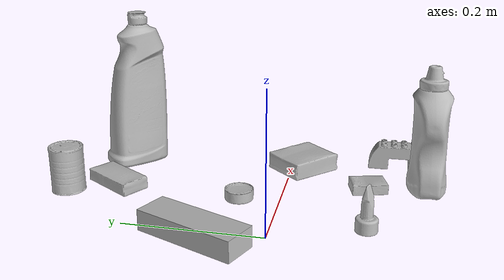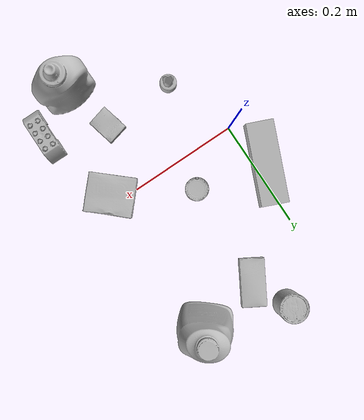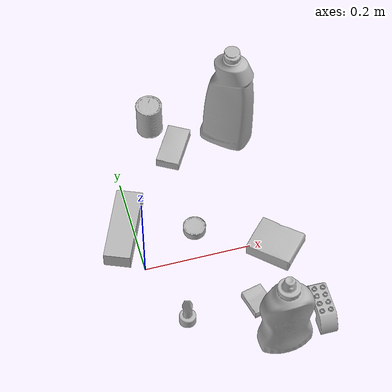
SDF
<sdf version="1.4">
  <world name="default">
    <light name="light1" type="point">
      <pose>0 0 1 0 0 0</pose>
      <diffuse>3 3 3 1</diffuse>
      <specular>3 3 3 1</specular>
    </light>
    <light name="light2" type="point">
      <pose>0 0.5 2 0 0 0</pose>
      <diffuse>1 1 1 1</diffuse>
      <specular>1 1 1 1</specular>
    </light>
    <light name="light3" type="point">
      <pose>0 0.5 2 0 0 0</pose>
      <diffuse>3 3 3 1</diffuse>
      <specular>3 3 3 1</specular>
    </light>
    <scene>
      <ambient>0.7 0.7 0.7</ambient>
    </scene>
    <model name="bottle1">
      <link name="link_bottle1">
        <collision name="default">
          <geometry>
            <mesh>
              <uri>model://mustard_bottle/collision_meshes/collision.obj</uri>
              <scale>1.0 1.0 1.0</scale>
            </mesh>
          </geometry>
          <surface>
            <friction>
              <ode>
                <mu>0.5</mu>
                <mu2>0.5</mu2>
              </ode>
            </friction>
          <contact>
        <ode>
            <max_vel>0</max_vel>
            <min_depth>0.0001</min_depth>
            <kp>1e8</kp>
        </ode>
    </contact></surface>
        </collision>
        <visual name="default">
          <geometry>
            <mesh>
              <uri>model://mustard_bottle/visual_meshes/visual.dae</uri>
              <scale>1.0 1.0 1.0</scale>
            </mesh>
          </geometry>
        </visual>
        <inertial>
          <mass>0.8303800225257874</mass>
          <pose>0.0005032453336752951 -0.00015647402324248105 -0.017475798726081848 0.0004182333015560062 0.0009465791044325989 0.02485372608929167</pose>
          <inertia>
            <ixx>0.0023058522</ixx>
            <iyy>0.0020231898</iyy>
            <izz>0.00060770847</izz>
            <ixy>0</ixy>
            <ixz>0</ixz>
            <iyz>0</iyz>
          </inertia>
        </inertial>
      </link>
      <pose>0.20219996571540833 -0.20950089395046234 0.09583088755607605 -0.012050708201435183 -0.0048898496590886785 -1.5504002675899078</pose>
    </model>
    <model name="bottle2">
      <link name="link_bottle2">
        <collision name="default">
          <geometry>
            <mesh>
              <uri>model://bleach_cleanser/collision_meshes/collision.obj</uri>
              <scale>1.0 1.0 1.0</scale>
            </mesh>
          </geometry>
          <surface>
            <friction>
              <ode>
                <mu>0.5</mu>
                <mu2>0.5</mu2>
              </ode>
            </friction>
          <contact>
        <ode>
            <max_vel>0</max_vel>
            <min_depth>0.0001</min_depth>
            <kp>1e8</kp>
        </ode>
    </contact></surface>
        </collision>
        <visual name="default">
          <geometry>
            <mesh>
              <uri>model://bleach_cleanser/visual_meshes/visual.dae</uri>
              <scale>1.0 1.0 1.0</scale>
            </mesh>
          </geometry>
        </visual>
        <inertial>
          <mass>1.2443958520889282</mass>
          <pose>0.00012193184375064448 0.0037838828284293413 -0.02442161552608013 -0.07381670616387152 0.00042011519151103325 -0.006875073427896589</pose>
          <inertia>
            <ixx>0.006056655</ixx>
            <iyy>0.005643917</iyy>
            <izz>0.0010355307</izz>
            <ixy>0</ixy>
            <ixz>0</ixz>
            <iyz>0</iyz>
          </inertia>
        </inertial>
      </link>
      <pose>0.2305043786764145 0.2629775404930115 0.12606443464756012 -0.004282876209437135 0.006101093403923788 -2.3049961101476115</pose>
    </model>
    <model name="toy1">
      <link name="link_toy1">
        <collision name="default">
          <geometry>
            <mesh>
              <uri>model://e_lego_duplo/collision_meshes/collision.obj</uri>
              <scale>1.0 1.0 1.0</scale>
            </mesh>
          </geometry>
          <surface>
            <friction>
              <ode>
                <mu>0.5</mu>
                <mu2>0.5</mu2>
              </ode>
            </friction>
          <contact>
        <ode>
            <max_vel>0</max_vel>
            <min_depth>0.0001</min_depth>
            <kp>1e8</kp>
        </ode>
    </contact></surface>
        </collision>
        <visual name="default">
          <geometry>
            <mesh>
              <uri>model://e_lego_duplo/visual_meshes/visual.dae</uri>
              <scale>1.0 1.0 1.0</scale>
            </mesh>
          </geometry>
        </visual>
        <inertial>
          <mass>0.09737597405910492</mass>
          <pose>0.00032560466206632555 0.00023485408746637404 0.00195214559789747 -0.022567666099209266 -6.826041083389806e-05 -0.0076251575404409295</pose>
          <inertia>
            <ixx>2.0306108e-05</ixx>
            <iyy>8.3341496e-05</iyy>
            <izz>8.115786e-05</izz>
            <ixy>0</ixy>
            <ixz>0</ixz>
            <iyz>0</iyz>
          </inertia>
        </inertial>
      </link>
      <pose>0.2828741669654846 -0.17107488214969635 0.021809007972478867 2.1798240199438944e-07 -3.962827808797661e-07 -1.5802146017430447</pose>
    </model>
    <model name="toy2">
      <link name="link_toy2">
        <collision name="default">
          <geometry>
            <mesh>
              <uri>model://e_toy_airplane/collision_meshes/collision.obj</uri>
              <scale>1.0 1.0 1.0</scale>
            </mesh>
          </geometry>
          <surface>
            <friction>
              <ode>
                <mu>0.5</mu>
                <mu2>0.5</mu2>
              </ode>
            </friction>
          <contact>
        <ode>
            <max_vel>0</max_vel>
            <min_depth>0.0001</min_depth>
            <kp>1e8</kp>
        </ode>
    </contact></surface>
        </collision>
        <visual name="default">
          <geometry>
            <mesh>
              <uri>model://e_toy_airplane/visual_meshes/visual.dae</uri>
              <scale>1.0 1.0 1.0</scale>
            </mesh>
          </geometry>
        </visual>
        <inertial>
          <mass>0.02463557943701744</mass>
          <pose>0.0001174048229586333 -2.2482929125544615e-05 -0.011187203228473663 0.005518471763615081 0.009228316378097946 0.15041226495803456</pose>
          <inertia>
            <ixx>7.519061e-06</ixx>
            <iyy>7.442144e-06</iyy>
            <izz>2.2597733e-06</izz>
            <ixy>0</ixy>
            <ixz>0</ixz>
            <iyz>0</iyz>
          </inertia>
        </inertial>
      </link>
      <pose>0.04610972851514816 -0.12629662454128265 0.03321196138858795 4.176040579882199e-05 -0.00013991798459290887 1.0613395368927085</pose>
    </model>
    <model name="can1">
      <link name="link_can1">
        <collision name="default">
          <geometry>
            <mesh>
              <uri>model://master_chef_can/collision_meshes/collision.obj</uri>
              <scale>0.5 0.5 0.5</scale>
            </mesh>
          </geometry>
          <surface>
            <friction>
              <ode>
                <mu>0.5</mu>
                <mu2>0.5</mu2>
              </ode>
            </friction>
          <contact>
        <ode>
            <max_vel>0</max_vel>
            <min_depth>0.0001</min_depth>
            <kp>1e8</kp>
        </ode>
    </contact></surface>
        </collision>
        <visual name="default">
          <geometry>
            <mesh>
              <uri>model://master_chef_can/visual_meshes/visual.dae</uri>
              <scale>0.5 0.5 0.5</scale>
            </mesh>
          </geometry>
        </visual>
        <inertial>
          <mass>0.10604178160429001</mass>
          <pose>-4.6619643399026245e-05 1.3926852204804163e-07 -5.079910988570191e-05 -0.0017995162277820833 0.0006479167566960504 -0.6102671332965355</pose>
          <inertia>
            <ixx>6.2239335e-05</ixx>
            <iyy>6.178125e-05</iyy>
            <izz>3.439199e-05</izz>
            <ixy>0</ixy>
            <ixz>0</ixz>
            <iyz>0</iyz>
          </inertia>
        </inertial>
      </link>
      <pose>0.08960017561912537 0.3211568593978882 0.03530198335647583 -1.2147894613859567e-06 -9.900070702640948e-07 1.629011240602271</pose>
    </model>
    <model name="can2">
      <link name="link_can2">
        <collision name="default">
          <geometry>
            <mesh>
              <uri>model://tuna_fish_can/collision_meshes/collision.obj</uri>
              <scale>0.5 0.5 0.5</scale>
            </mesh>
          </geometry>
          <surface>
            <friction>
              <ode>
                <mu>0.5</mu>
                <mu2>0.5</mu2>
              </ode>
            </friction>
          <contact>
        <ode>
            <max_vel>0</max_vel>
            <min_depth>0.0001</min_depth>
            <kp>1e8</kp>
        </ode>
    </contact></surface>
        </collision>
        <visual name="default">
          <geometry>
            <mesh>
              <uri>model://tuna_fish_can/visual_meshes/visual.dae</uri>
              <scale>0.5 0.5 0.5</scale>
            </mesh>
          </geometry>
        </visual>
        <inertial>
          <mass>0.028372401371598244</mass>
          <pose>-2.0361669157864526e-05 -7.256527169374749e-06 -0.0005269024986773729 -0.0017944775646394609 0.00017161727950706725 0.2405381123423382</pose>
          <inertia>
            <ixx>3.8359926e-06</ixx>
            <iyy>3.8200033e-06</iyy>
            <izz>6.5639315e-06</izz>
            <ixy>0</ixy>
            <ixz>0</ixz>
            <iyz>0</iyz>
          </inertia>
        </inertial>
      </link>
      <pose>0.10969515889883041 0.06003129482269287 0.00851999968290329 -2.6002767825596505e-08 -4.081469408719399e-09 -0.005009361880413109</pose>
    </model>
    <model name="box1">
      <link name="link_box1">
        <collision name="default">
          <geometry>
            <mesh>
              <uri>model://jenga/collision_meshes/collision.obj</uri>
              <scale>1.0 1.0 1.0</scale>
            </mesh>
          </geometry>
          <surface>
            <friction>
              <ode>
                <mu>0.5</mu>
                <mu2>0.5</mu2>
              </ode>
            </friction>
          <contact>
        <ode>
            <max_vel>0</max_vel>
            <min_depth>0.0001</min_depth>
            <kp>1e8</kp>
        </ode>
    </contact></surface>
        </collision>
        <visual name="default">
          <geometry>
            <mesh>
              <uri>model://jenga/visual_meshes/visual.dae</uri>
              <scale>1.0 1.0 1.0</scale>
            </mesh>
          </geometry>
        </visual>
        <inertial>
          <mass>0.19909408688545227</mass>
          <pose>-2.502855807051674e-07 -0.0001025000965455547 -4.0923401684267446e-05 0.0 -7.34215461761844e-07 0.0</pose>
          <inertia>
            <ixx>5.509416e-05</ixx>
            <iyy>0.00037331658</iyy>
            <izz>0.00039854718</izz>
            <ixy>0</ixy>
            <ixz>0</ixz>
            <iyz>0</iyz>
          </inertia>
        </inertial>
      </link>
      <pose>-0.0184235330671072 0.09117908775806427 0.015000000596046448 2.974805175143656e-09 1.7639555292424588e-11 -1.9715534547900653</pose>
    </model>
    <model name="box2">
      <link name="link_box2">
        <collision name="default">
          <geometry>
            <mesh>
              <uri>model://cracker_box/collision_meshes/collision.obj</uri>
              <scale>0.25 0.25 0.25</scale>
            </mesh>
          </geometry>
          <surface>
            <friction>
              <ode>
                <mu>0.5</mu>
                <mu2>0.5</mu2>
              </ode>
            </friction>
          <contact>
        <ode>
            <max_vel>0</max_vel>
            <min_depth>0.0001</min_depth>
            <kp>1e8</kp>
        </ode>
    </contact></surface>
        </collision>
        <visual name="default">
          <geometry>
            <mesh>
              <uri>model://cracker_box/visual_meshes/visual.dae</uri>
              <scale>0.25 0.25 0.25</scale>
            </mesh>
          </geometry>
        </visual>
        <inertial>
          <mass>0.04114612191915512</mass>
          <pose>0.00023660354781895876 6.358561950037256e-05 -0.0004257383698131889 -0.00031620780631524763 -0.011106488668660274 0.002546795934166242</pose>
          <inertia>
            <ixx>6.5410845e-06</ixx>
            <iyy>1.0800616e-05</iyy>
            <izz>1.5413472e-05</izz>
            <ixy>0</ixy>
            <ixz>0</ixz>
            <iyz>0</iyz>
          </inertia>
        </inertial>
      </link>
      <pose>0.17781521379947662 -0.12483102828264236 0.009096025489270687 -0.014050627666607283 -0.005016549902315014 -1.3410404568182042</pose>
    </model>
    <model name="box3">
      <link name="link_box3">
        <collision name="default">
          <geometry>
            <mesh>
              <uri>model://gelatin_box/collision_meshes/collision.obj</uri>
              <scale>1.0 1.0 1.0</scale>
            </mesh>
          </geometry>
          <surface>
            <friction>
              <ode>
                <mu>0.5</mu>
                <mu2>0.5</mu2>
              </ode>
            </friction>
          <contact>
        <ode>
            <max_vel>0</max_vel>
            <min_depth>0.0001</min_depth>
            <kp>1e8</kp>
        </ode>
    </contact></surface>
        </collision>
        <visual name="default">
          <geometry>
            <mesh>
              <uri>model://gelatin_box/visual_meshes/visual.dae</uri>
              <scale>1.0 1.0 1.0</scale>
            </mesh>
          </geometry>
        </visual>
        <inertial>
          <mass>0.2244011014699936</mass>
          <pose>0.00043196187471039593 0.00011156871914863586 -0.00036403213744051754 -0.001050372105108351 -0.004755819619724262 0.01644056133527167</pose>
          <inertia>
            <ixx>0.00015840889</ixx>
            <iyy>0.000113150636</iyy>
            <izz>0.0002411336</izz>
            <ixy>0</ixy>
            <ixz>0</ixz>
            <iyz>0</iyz>
          </inertia>
        </inertial>
      </link>
      <pose>0.2435912787914276 -0.018010860309004784 0.01516831386834383 0.0055969690041645865 -0.007304022271599993 0.8203435053007975</pose>
    </model>
    <model name="box4">
      <link name="link_box4">
        <collision name="default">
          <geometry>
            <mesh>
              <uri>model://sugar_box/collision_meshes/collision.obj</uri>
              <scale>0.5 0.5 0.5</scale>
            </mesh>
          </geometry>
          <surface>
            <friction>
              <ode>
                <mu>0.5</mu>
                <mu2>0.5</mu2>
              </ode>
            </friction>
          <contact>
        <ode>
            <max_vel>0</max_vel>
            <min_depth>0.0001</min_depth>
            <kp>1e8</kp>
        </ode>
    </contact></surface>
        </collision>
        <visual name="default">
          <geometry>
            <mesh>
              <uri>model://sugar_box/visual_meshes/visual.dae</uri>
              <scale>0.5 0.5 0.5</scale>
            </mesh>
          </geometry>
        </visual>
        <inertial>
          <mass>0.11117161065340042</mass>
          <pose>0.0005171863595023751 1.9245546354795806e-05 -0.00018182402709499002 -0.0004046265622990317 0.001050663638873437 0.002615378555930204</pose>
          <inertia>
            <ixx>2.3156968e-05</ixx>
            <iyy>7.4848074e-05</iyy>
            <izz>8.960209e-05</izz>
            <ixy>0</ixy>
            <ixz>0</ixz>
            <iyz>0</iyz>
          </inertia>
        </inertial>
      </link>
      <pose>0.11995938420295715 0.25376033782958984 0.011399299837648869 0.0007753370935612514 -0.02343327537346512 1.0334667168303235</pose>
    </model>
  <physics type="ode">
      <max_contacts>50</max_contacts>
      <ode>
        <solver>
          <type>quick</type>
          <iters>75</iters>
        </solver>
        <constraints>
          <contact_max_correcting_vel>0</contact_max_correcting_vel>
          <contact_surface_layer>0</contact_surface_layer>
        </constraints>
      </ode>
    </physics></world>
</sdf>
